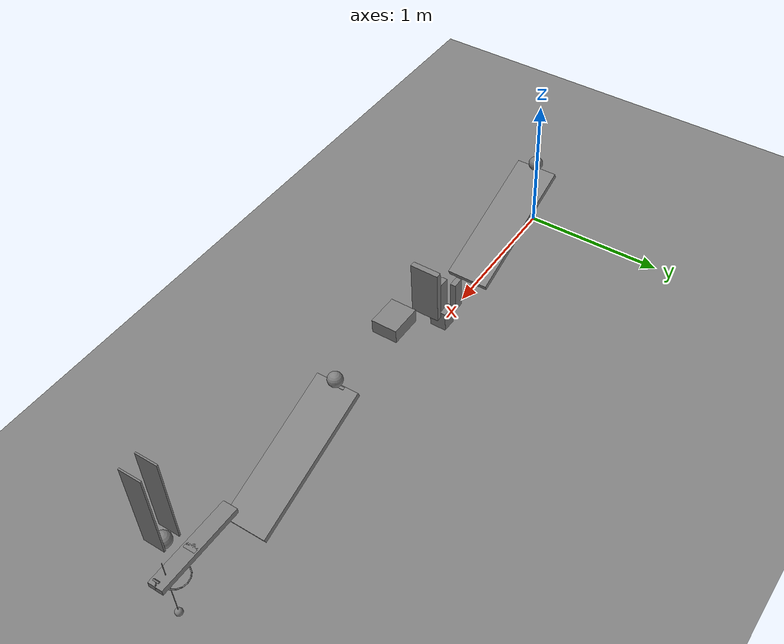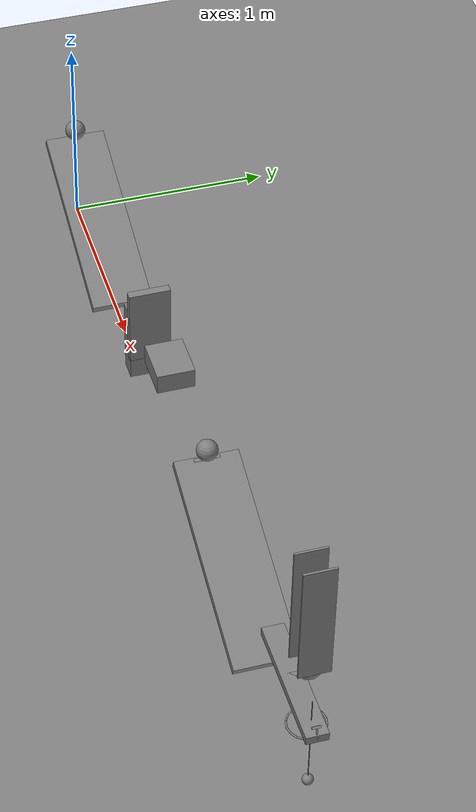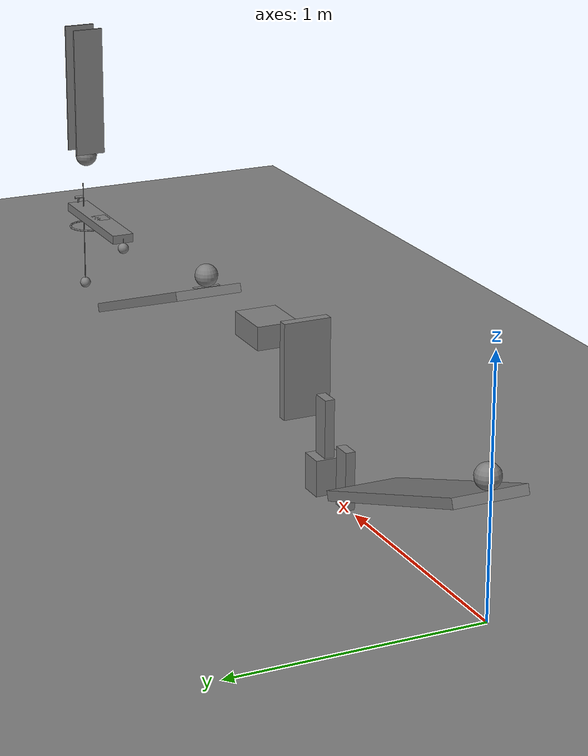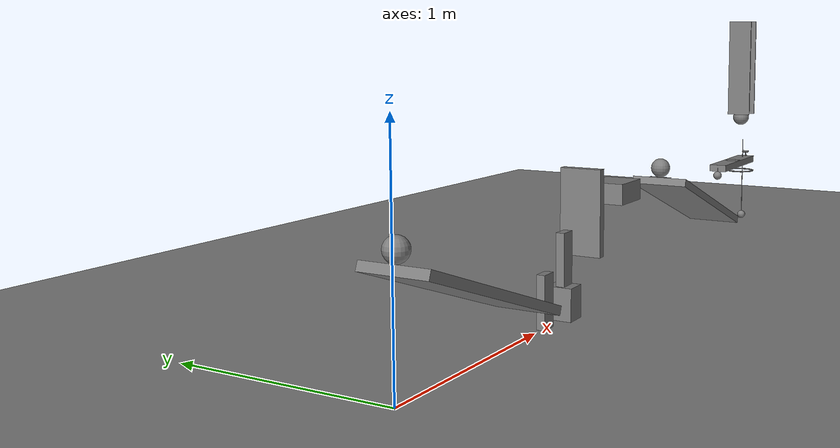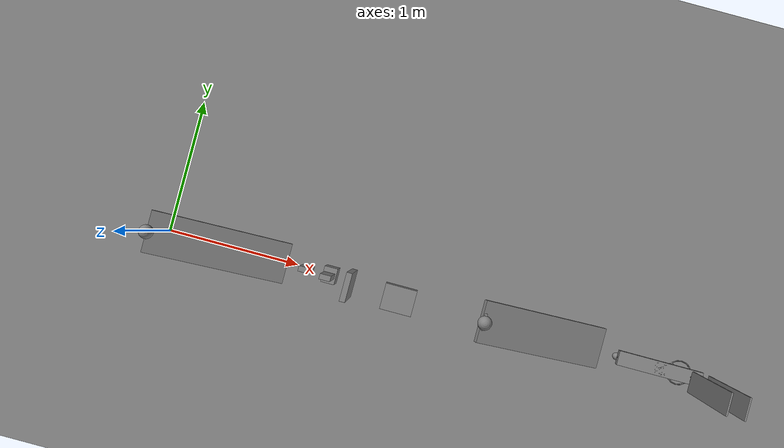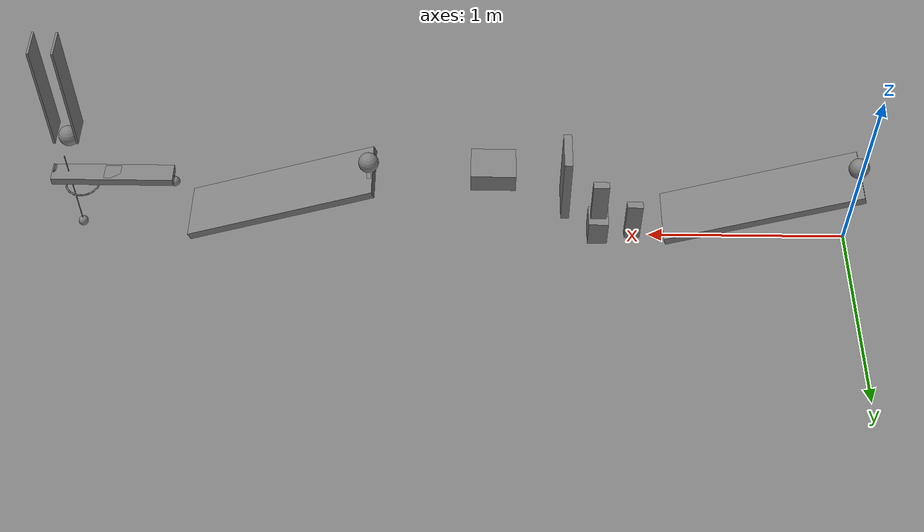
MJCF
<mujoco model="gravity_chain_with_short_launch_shoe">
  <compiler angle="radian"/>
  <option timestep="0.002"/>
  <worldbody>
    <geom name="floor" type="plane" size="12 12 0.1" friction="0.7 0 0.002"/>
    <body name="ramp1">
      <geom name="ramp1" type="box" pos="0.469847 0 0.302216" size="0.5 0.15 0.02" euler="0 0.349066 0" friction="0.7 0 0" solref="0.01 0.690107"/>
    </body>
    <body name="ball1" pos="0.0239414 0 0.539004">
      <freejoint/>
      <geom name="ball1" type="sphere" pos="0 0 0" size="0.05" mass="0.2" condim="6" friction="0.7 0 0" solref="0.01 0.690107"/>
    </body>
    <body name="domino1" pos="1.08653 0 0.12">
      <freejoint/>
      <geom name="domino1" type="box" pos="0 0 0" size="0.04 0.02 0.12" mass="0.25" friction="0.7 0 0" solref="0.01 0.690107"/>
    </body>
    <body name="domino2 pedestal">
      <geom name="domino2 pedestal" type="box" pos="1.26653 0 0.075" size="0.05 0.06 0.075" friction="0.7 0 0" solref="0.01 0.690107"/>
    </body>
    <body name="domino2" pos="1.26653 0 0.27">
      <freejoint/>
      <geom name="domino2" type="box" pos="0 0 0" size="0.04 0.02 0.12" mass="0.25" friction="0.7 0 0" solref="0.01 0.690107"/>
    </body>
    <body name="flap1" pos="1.44653 0 0.25">
      <joint name="flap_hinge" type="hinge" pos="0 0 0" axis="0 1 0" limited="true" range="0 1.13446" damping="0.04"/>
      <geom name="flap1" type="box" pos="0 0 0.2" size="0.02 0.1 0.2" mass="0.3" friction="0.7 0 0" solref="0.01 0.690107"/>
    </body>
    <body name="cart1" pos="1.80653 0 0.5">
      <joint name="cart_slide" type="slide" pos="0 0 0" axis="1 0 0" limited="true" range="0 0.55" damping="0.2"/>
      <geom name="cart1" type="box" pos="0 0 0" size="0.11 0.09 0.05" mass="0.5" friction="0.7 0 0" solref="0.01 0.690107"/>
    </body>
    <body name="ramp2">
      <geom name="ramp2" type="box" pos="2.86244 0 0.302216" size="0.5 0.15 0.02" euler="0 0.349066 0" friction="0.7 0 0" solref="0.01 0.690107"/>
    </body>
    <body name="ball2 starting perch">
      <geom name="ball2 starting perch" type="box" pos="2.41653 0 0.49152" size="0.01 0.06 0.0005" friction="0.7 0 0" solref="0.01 0.690107"/>
    </body>
    <body name="ball2" pos="2.41653 0 0.54202">
      <freejoint/>
      <geom name="ball2" type="sphere" pos="0 0 0" size="0.05" mass="0.2" condim="6" friction="0.7 0 0" solref="0.01 0.690107"/>
    </body>
    <body name="lever1" pos="3.6854 0 0.43">
      <joint name="lever_hinge" type="hinge" pos="0 0 0" axis="0 1 0" limited="true" range="-1.5708 -0.785398" stiffness="0.39" springref="-1.5708" damping="0.04"/>
      <geom name="lever1_panel" type="box" pos="0 0 0" size="0.3 0.05 0.02" mass="0.125" friction="0.7 0 0" solref="0.01 0.690107"/>
      <geom name="lever1_central_ballast" type="box" pos="0 0 0" size="0.04 0.04 0.02" mass="0.35" friction="0.7 0 0" solref="0.01 0.690107"/>
      <geom name="lever1_striker" type="sphere" pos="-0.3 0 -0.045" size="0.025" mass="0.005" friction="0.7 0 0" solref="0.01 0.690107"/>
      <geom name="lever1_striker_link" type="capsule" size="0.002" fromto="-0.3 0 0 -0.3 0 -0.045" mass="0.005" friction="0.7 0 0" solref="0.01 0.690107"/>
      <geom name="lever1_launch_shoe" type="box" pos="0.278786 0 0.0487868" size="0.00499999 0.02 0.005" euler="0 0.785398 0" mass="0.01" friction="0.7 0 0" solref="0.01 0.690107"/>
      <geom name="lever1_shoe_mount" type="capsule" size="0.004" fromto="0.3 0 0 0.278786 0 0.0487868" mass="0.005" friction="0.7 0 0" solref="0.01 0.690107"/>
    </body>
    <body name="ball3" pos="3.84803 0 0.716629">
      <freejoint/>
      <geom name="ball3" type="sphere" pos="0 0 0" size="0.05" mass="0.2" condim="6" friction="0.7 0 0" solref="0.01 0.690107"/>
    </body>
    <body name="launch guide near">
      <geom name="launch guide near" type="box" pos="3.79303 0 1.03663" size="0.005 0.07 0.3" friction="0.7 0 0" solref="0.01 0.690107"/>
    </body>
    <body name="launch guide far">
      <geom name="launch guide far" type="box" pos="3.90303 0 1.03663" size="0.005 0.07 0.3" friction="0.7 0 0" solref="0.01 0.690107"/>
    </body>
    <body name="ring1">
      <geom name="ring1_00" type="capsule" size="0.004" fromto="3.93203 0 0.366629 3.92564 0.0321454 0.366629" friction="0.7 0 0" solref="0.01 0.690107"/>
      <geom name="ring1_01" type="capsule" size="0.004" fromto="3.92564 0.0321454 0.366629 3.90743 0.059397 0.366629" friction="0.7 0 0" solref="0.01 0.690107"/>
      <geom name="ring1_02" type="capsule" size="0.004" fromto="3.90743 0.059397 0.366629 3.88018 0.0776059 0.366629" friction="0.7 0 0" solref="0.01 0.690107"/>
      <geom name="ring1_03" type="capsule" size="0.004" fromto="3.88018 0.0776059 0.366629 3.84803 0.084 0.366629" friction="0.7 0 0" solref="0.01 0.690107"/>
      <geom name="ring1_04" type="capsule" size="0.004" fromto="3.84803 0.084 0.366629 3.81589 0.0776059 0.366629" friction="0.7 0 0" solref="0.01 0.690107"/>
      <geom name="ring1_05" type="capsule" size="0.004" fromto="3.81589 0.0776059 0.366629 3.78864 0.059397 0.366629" friction="0.7 0 0" solref="0.01 0.690107"/>
      <geom name="ring1_06" type="capsule" size="0.004" fromto="3.78864 0.059397 0.366629 3.77043 0.0321454 0.366629" friction="0.7 0 0" solref="0.01 0.690107"/>
      <geom name="ring1_07" type="capsule" size="0.004" fromto="3.77043 0.0321454 0.366629 3.76403 1.0287e-17 0.366629" friction="0.7 0 0" solref="0.01 0.690107"/>
      <geom name="ring1_08" type="capsule" size="0.004" fromto="3.76403 1.0287e-17 0.366629 3.77043 -0.0321454 0.366629" friction="0.7 0 0" solref="0.01 0.690107"/>
      <geom name="ring1_09" type="capsule" size="0.004" fromto="3.77043 -0.0321454 0.366629 3.78864 -0.059397 0.366629" friction="0.7 0 0" solref="0.01 0.690107"/>
      <geom name="ring1_10" type="capsule" size="0.004" fromto="3.78864 -0.059397 0.366629 3.81589 -0.0776059 0.366629" friction="0.7 0 0" solref="0.01 0.690107"/>
      <geom name="ring1_11" type="capsule" size="0.004" fromto="3.81589 -0.0776059 0.366629 3.84803 -0.084 0.366629" friction="0.7 0 0" solref="0.01 0.690107"/>
      <geom name="ring1_12" type="capsule" size="0.004" fromto="3.84803 -0.084 0.366629 3.88018 -0.0776059 0.366629" friction="0.7 0 0" solref="0.01 0.690107"/>
      <geom name="ring1_13" type="capsule" size="0.004" fromto="3.88018 -0.0776059 0.366629 3.90743 -0.059397 0.366629" friction="0.7 0 0" solref="0.01 0.690107"/>
      <geom name="ring1_14" type="capsule" size="0.004" fromto="3.90743 -0.059397 0.366629 3.92564 -0.0321454 0.366629" friction="0.7 0 0" solref="0.01 0.690107"/>
      <geom name="ring1_15" type="capsule" size="0.004" fromto="3.92564 -0.0321454 0.366629 3.93203 -2.05741e-17 0.366629" friction="0.7 0 0" solref="0.01 0.690107"/>
    </body>
    <body name="pendulum1" pos="3.90203 0 0.564581">
      <joint name="pendulum_hinge" type="hinge" pos="0 0 0" axis="0 1 0" limited="true" range="-1.39626 1.39626" damping="0.04"/>
      <geom name="pendulum1_bob" type="sphere" pos="0 0 -0.5" size="0.025" mass="0.34" friction="0.7 0 0" solref="0.01 0.690107"/>
      <geom name="pendulum1_rod" type="capsule" size="0.002" fromto="0 0 0 0 0 -0.475" mass="0.01" friction="0.7 0 0" solref="0.01 0.690107"/>
    </body>
  </worldbody>
  <keyframe>
    <key name="start" qpos="0.0239414 0 0.539004 1 0 0 0 1.08653 0 0.12 1 0 0 0 1.26653 0 0.27 1 0 0 0 0 0 2.41653 0 0.54202 1 0 0 0 -0.785398 3.84803 0 0.716629 1 0 0 0 0" qvel="0 0 0 0 0 0 0 0 0 0 0 0 0 0 0 0 0 0 0 0 0 0 0 0 0 0 0 0 0 0 0 0 0 0"/>
  </keyframe>
</mujoco>
